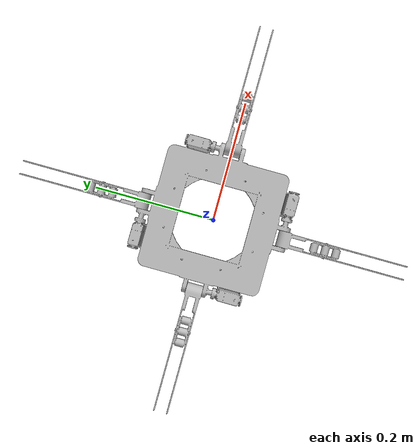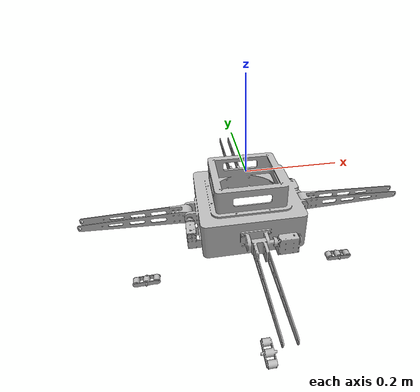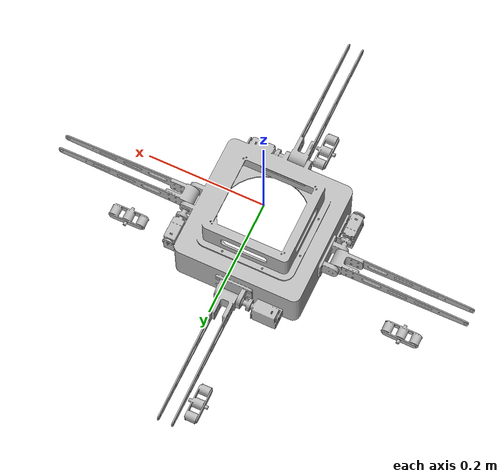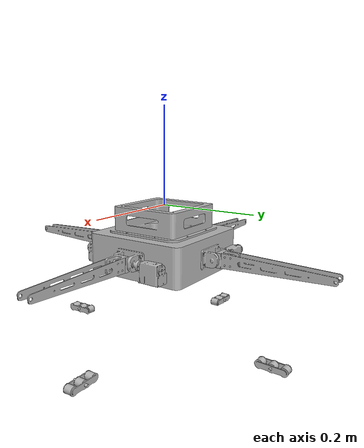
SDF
<sdf version='1.6'>
  <model name='landing_leg'>
    <link name='base_link'>
      <pose frame=''>0 0 0 0 -0 0</pose>
      <inertial>
        <pose frame=''>-0 -0 -0.077877 0 -0 0</pose>
        <mass>0.12479</mass>
        <inertia>
          <ixx>0.0027513</ixx>
          <ixy>9.4494e-16</ixy>
          <ixz>-8.7806e-15</ixz>
          <iyy>0.0027513</iyy>
          <iyz>-1.0013e-14</iyz>
          <izz>0.0049694</izz>
        </inertia>
      </inertial>
      <collision name='base_link_collision'>
        <pose frame=''>0 0 0 0 -0 0</pose>
        <geometry>
          <mesh>
            <scale>1 1 1</scale>
            <uri>model://landing_leg/meshes/base_link.STL</uri>
          </mesh>
        </geometry>
      </collision>
      <visual name='base_link_visual'>
        <pose frame=''>0 0 0 0 -0 0</pose>
        <geometry>
          <mesh>
            <scale>1 1 1</scale>
            <uri>model://landing_leg/meshes/base_link.STL</uri>
          </mesh>
        </geometry>
      </visual>
    </link>
    <link name='link1'>
      <pose frame=''>0.0245 -0.129 -0.093 0 -0 0</pose>
      <inertial>
        <pose frame=''>-0.02425 -0.030225 -0.046837 0 -0 0</pose>
        <mass>0.037564</mass>
        <inertia>
          <ixx>7.4131e-05</ixx>
          <ixy>0</ixy>
          <ixz>0</ixz>
          <iyy>5.2962e-05</iyy>
          <iyz>-3.1562e-05</iyz>
          <izz>2.442e-05</izz>
        </inertia>
      </inertial>
      <collision name='link1_collision'>
        <pose frame=''>0 0 0 0 -0 0</pose>
        <geometry>
          <mesh>
            <scale>1 1 1</scale>
            <uri>model://landing_leg/meshes/link1.STL</uri>
          </mesh>
        </geometry>
      </collision>
      <visual name='link1_visual'>
        <pose frame=''>0 0 0 0 -0 0</pose>
        <geometry>
          <mesh>
            <scale>1 1 1</scale>
            <uri>model://landing_leg/meshes/link1.STL</uri>
          </mesh>
        </geometry>
      </visual>
    </link>
    <joint name='joint1' type='revolute'>
      <child>link1</child>
      <parent>base_link</parent>
      <axis>
        <xyz>1 0 0</xyz>
        <limit>
          <lower>-3</lower>
          <upper>3</upper>
          <effort>10</effort>
          <velocity>10</velocity>
        </limit>
        <dynamics>
          <spring_reference>0</spring_reference>
          <spring_stiffness>0</spring_stiffness>
        </dynamics>
        <use_parent_model_frame>0</use_parent_model_frame>
      </axis>
    </joint>
    <link name='link1_1'>
      <pose frame=''>0.0095 -0.25317 -0.28541 0 -0 0</pose>
      <inertial>
        <pose frame=''>-0.009062 0 0 0 -0 0</pose>
        <mass>0.01515</mass>
        <inertia>
          <ixx>1.5658e-06</ixx>
          <ixy>0</ixy>
          <ixz>0</ixz>
          <iyy>6.1989e-07</iyy>
          <iyz>-1.6374e-07</iyz>
          <izz>1.6121e-06</izz>
        </inertia>
      </inertial>
      <collision name='link1_1_collision'>
        <pose frame=''>0 0 0 0 -0 0</pose>
        <geometry>
          <mesh>
            <scale>1 1 1</scale>
            <uri>model://landing_leg/meshes/link1_1.STL</uri>
          </mesh>
        </geometry>
      </collision>
      <visual name='link1_1_visual'>
        <pose frame=''>0 0 0 0 -0 0</pose>
        <geometry>
          <mesh>
            <scale>1 1 1</scale>
            <uri>model://landing_leg/meshes/link1_1.STL</uri>
          </mesh>
        </geometry>
      </visual>
    </link>
    <joint name='joint1_1' type='revolute'>
      <child>link1_1</child>
      <parent>link1</parent>
      <axis>
        <xyz>1 0 0</xyz>
        <limit>
          <lower>-3</lower>
          <upper>3</upper>
          <effort>10</effort>
          <velocity>10</velocity>
        </limit>
        <dynamics>
          <spring_reference>0</spring_reference>
          <spring_stiffness>0</spring_stiffness>
        </dynamics>
        <use_parent_model_frame>0</use_parent_model_frame>
      </axis>
    </joint>
    <link name='link2'>
      <pose frame=''>0.129 0.0245 -0.093 0 -0 0</pose>
      <inertial>
        <pose frame=''>0.030225 -0.02425 -0.046837 0 -0 0</pose>
        <mass>0.037564</mass>
        <inertia>
          <ixx>5.2962e-05</ixx>
          <ixy>0</ixy>
          <ixz>3.1562e-05</ixz>
          <iyy>7.4131e-05</iyy>
          <iyz>0</iyz>
          <izz>2.442e-05</izz>
        </inertia>
      </inertial>
      <collision name='link2_collision'>
        <pose frame=''>0 0 0 0 -0 0</pose>
        <geometry>
          <mesh>
            <scale>1 1 1</scale>
            <uri>model://landing_leg/meshes/link2.STL</uri>
          </mesh>
        </geometry>
      </collision>
      <visual name='link2_visual'>
        <pose frame=''>0 0 0 0 -0 0</pose>
        <geometry>
          <mesh>
            <scale>1 1 1</scale>
            <uri>model://landing_leg/meshes/link2.STL</uri>
          </mesh>
        </geometry>
      </visual>
    </link>
    <joint name='joint2' type='revolute'>
      <child>link2</child>
      <parent>base_link</parent>
      <axis>
        <xyz>0 1 0</xyz>
        <limit>
          <lower>-3</lower>
          <upper>3</upper>
          <effort>10</effort>
          <velocity>10</velocity>
        </limit>
        <dynamics>
          <spring_reference>0</spring_reference>
          <spring_stiffness>0</spring_stiffness>
        </dynamics>
        <use_parent_model_frame>0</use_parent_model_frame>
      </axis>
    </joint>
    <link name='link2_1'>
      <pose frame=''>0.25317 0.0095 -0.28541 0 -0 0</pose>
      <inertial>
        <pose frame=''>0 -0.009062 0 0 -0 0</pose>
        <mass>0.01515</mass>
        <inertia>
          <ixx>6.1989e-07</ixx>
          <ixy>0</ixy>
          <ixz>1.6374e-07</ixz>
          <iyy>1.5658e-06</iyy>
          <iyz>0</iyz>
          <izz>1.6121e-06</izz>
        </inertia>
      </inertial>
      <collision name='link2_1_collision'>
        <pose frame=''>0 0 0 0 -0 0</pose>
        <geometry>
          <mesh>
            <scale>1 1 1</scale>
            <uri>model://landing_leg/meshes/link2_1.STL</uri>
          </mesh>
        </geometry>
      </collision>
      <visual name='link2_1_visual'>
        <pose frame=''>0 0 0 0 -0 0</pose>
        <geometry>
          <mesh>
            <scale>1 1 1</scale>
            <uri>model://landing_leg/meshes/link2_1.STL</uri>
          </mesh>
        </geometry>
      </visual>
    </link>
    <joint name='joint2_1' type='revolute'>
      <child>link2_1</child>
      <parent>link2</parent>
      <axis>
        <xyz>0 1 0</xyz>
        <limit>
          <lower>-3</lower>
          <upper>3</upper>
          <effort>10</effort>
          <velocity>10</velocity>
        </limit>
        <dynamics>
          <spring_reference>0</spring_reference>
          <spring_stiffness>0</spring_stiffness>
        </dynamics>
        <use_parent_model_frame>0</use_parent_model_frame>
      </axis>
    </joint>
    <link name='link3'>
      <pose frame=''>-0.0245 0.129 -0.093 0 -0 0</pose>
      <inertial>
        <pose frame=''>0.02425 0.030225 -0.046837 0 -0 0</pose>
        <mass>0.037564</mass>
        <inertia>
          <ixx>7.4131e-05</ixx>
          <ixy>0</ixy>
          <ixz>0</ixz>
          <iyy>5.2962e-05</iyy>
          <iyz>3.1562e-05</iyz>
          <izz>2.442e-05</izz>
        </inertia>
      </inertial>
      <collision name='link3_collision'>
        <pose frame=''>0 0 0 0 -0 0</pose>
        <geometry>
          <mesh>
            <scale>1 1 1</scale>
            <uri>model://landing_leg/meshes/link3.STL</uri>
          </mesh>
        </geometry>
      </collision>
      <visual name='link3_visual'>
        <pose frame=''>0 0 0 0 -0 0</pose>
        <geometry>
          <mesh>
            <scale>1 1 1</scale>
            <uri>model://landing_leg/meshes/link3.STL</uri>
          </mesh>
        </geometry>
      </visual>
    </link>
    <joint name='joint3' type='revolute'>
      <child>link3</child>
      <parent>base_link</parent>
      <axis>
        <xyz>-1 0 0</xyz>
        <limit>
          <lower>-3</lower>
          <upper>3</upper>
          <effort>10</effort>
          <velocity>10</velocity>
        </limit>
        <dynamics>
          <spring_reference>0</spring_reference>
          <spring_stiffness>0</spring_stiffness>
        </dynamics>
        <use_parent_model_frame>0</use_parent_model_frame>
      </axis>
    </joint>
    <link name='link3_1'>
      <pose frame=''>-0.0095 0.25317 -0.28541 0 -0 0</pose>
      <inertial>
        <pose frame=''>0.009062 -0 0 0 -0 0</pose>
        <mass>0.01515</mass>
        <inertia>
          <ixx>1.5658e-06</ixx>
          <ixy>0</ixy>
          <ixz>0</ixz>
          <iyy>6.1989e-07</iyy>
          <iyz>1.6374e-07</iyz>
          <izz>1.6121e-06</izz>
        </inertia>
      </inertial>
      <collision name='link3_1_collision'>
        <pose frame=''>0 0 0 0 -0 0</pose>
        <geometry>
          <mesh>
            <scale>1 1 1</scale>
            <uri>model://landing_leg/meshes/link3_1.STL</uri>
          </mesh>
        </geometry>
      </collision>
      <visual name='link3_1_visual'>
        <pose frame=''>0 0 0 0 -0 0</pose>
        <geometry>
          <mesh>
            <scale>1 1 1</scale>
            <uri>model://landing_leg/meshes/link3_1.STL</uri>
          </mesh>
        </geometry>
      </visual>
    </link>
    <joint name='joint3_1' type='revolute'>
      <child>link3_1</child>
      <parent>link3</parent>
      <axis>
        <xyz>-1 0 0</xyz>
        <limit>
          <lower>-3</lower>
          <upper>3</upper>
          <effort>10</effort>
          <velocity>10</velocity>
        </limit>
        <dynamics>
          <spring_reference>0</spring_reference>
          <spring_stiffness>0</spring_stiffness>
        </dynamics>
        <use_parent_model_frame>0</use_parent_model_frame>
      </axis>
    </joint>
    <link name='link4'>
      <pose frame=''>-0.129 -0.0245 -0.093 0 -0 0</pose>
      <inertial>
        <pose frame=''>-0.030225 0.02425 -0.046837 0 -0 0</pose>
        <mass>0.037564</mass>
        <inertia>
          <ixx>5.2962e-05</ixx>
          <ixy>0</ixy>
          <ixz>-3.1562e-05</ixz>
          <iyy>7.4131e-05</iyy>
          <iyz>0</iyz>
          <izz>2.442e-05</izz>
        </inertia>
      </inertial>
      <collision name='link4_collision'>
        <pose frame=''>0 0 0 0 -0 0</pose>
        <geometry>
          <mesh>
            <scale>1 1 1</scale>
            <uri>model://landing_leg/meshes/link4.STL</uri>
          </mesh>
        </geometry>
      </collision>
      <visual name='link4_visual'>
        <pose frame=''>0 0 0 0 -0 0</pose>
        <geometry>
          <mesh>
            <scale>1 1 1</scale>
            <uri>model://landing_leg/meshes/link4.STL</uri>
          </mesh>
        </geometry>
      </visual>
    </link>
    <joint name='joint4' type='revolute'>
      <child>link4</child>
      <parent>base_link</parent>
      <axis>
        <xyz>0 -1 0</xyz>
        <limit>
          <lower>-3</lower>
          <upper>3</upper>
          <effort>10</effort>
          <velocity>10</velocity>
        </limit>
        <dynamics>
          <spring_reference>0</spring_reference>
          <spring_stiffness>0</spring_stiffness>
        </dynamics>
        <use_parent_model_frame>0</use_parent_model_frame>
      </axis>
    </joint>
    <link name='link4_1'>
      <pose frame=''>-0.25317 -0.0085 -0.28541 0 -0 0</pose>
      <inertial>
        <pose frame=''>0 0.008062 0 0 -0 0</pose>
        <mass>0.01515</mass>
        <inertia>
          <ixx>6.1989e-07</ixx>
          <ixy>0</ixy>
          <ixz>-1.6374e-07</ixz>
          <iyy>1.5658e-06</iyy>
          <iyz>0</iyz>
          <izz>1.6121e-06</izz>
        </inertia>
      </inertial>
      <collision name='link4_1_collision'>
        <pose frame=''>0 0 0 0 -0 0</pose>
        <geometry>
          <mesh>
            <scale>1 1 1</scale>
            <uri>model://landing_leg/meshes/link4_1.STL</uri>
          </mesh>
        </geometry>
      </collision>
      <visual name='link4_1_visual'>
        <pose frame=''>0 0 0 0 -0 0</pose>
        <geometry>
          <mesh>
            <scale>1 1 1</scale>
            <uri>model://landing_leg/meshes/link4_1.STL</uri>
          </mesh>
        </geometry>
      </visual>
    </link>
    <joint name='joint4_1' type='revolute'>
      <child>link4_1</child>
      <parent>link4</parent>
      <axis>
        <xyz>0 -1 0</xyz>
        <limit>
          <lower>-3</lower>
          <upper>3</upper>
          <effort>10</effort>
          <velocity>10</velocity>
        </limit>
        <dynamics>
          <spring_reference>0</spring_reference>
          <spring_stiffness>0</spring_stiffness>
        </dynamics>
        <use_parent_model_frame>0</use_parent_model_frame>
      </axis>
    </joint>
  </model>
</sdf>
